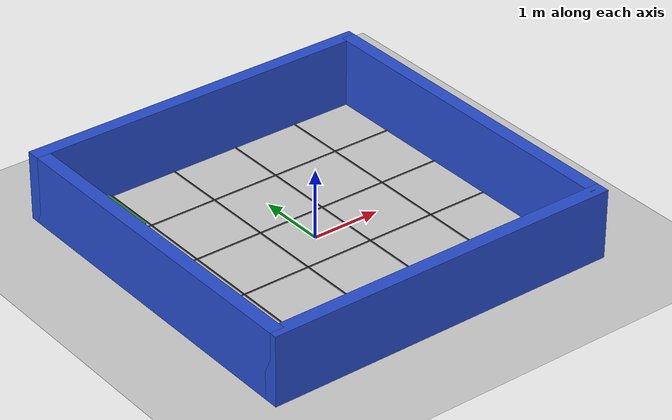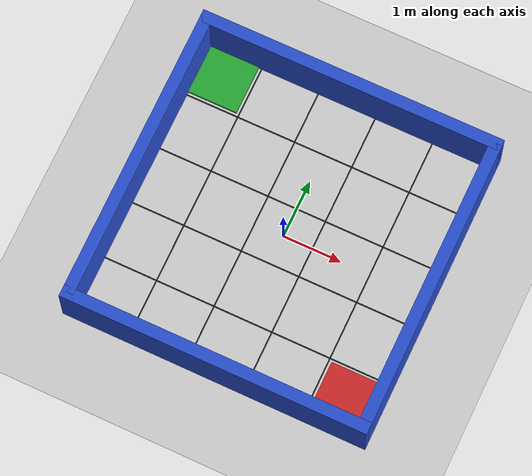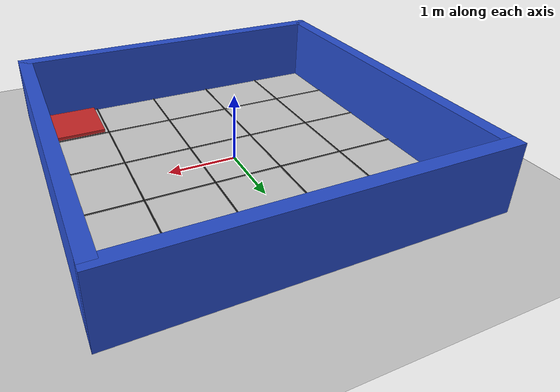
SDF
<?xml version="1.0" ?>
<sdf version="1.6">
  <world name="default">
    <include>
      <uri>model://sun</uri>
    </include>
    <include>
      <uri>model://ground_plane</uri>
    </include>

    <!-- ============ 5x5 Grid Walls ============ -->
    <model name="surrounding_walls">
      <static>true</static>

      <!-- North Wall -->
      <link name="wall_north">
        <pose>0 2.5 0.5 0 0 0</pose>
        <collision name="collision"><geometry><box><size>5.2 0.2 1</size></box></geometry></collision>
        <visual name="visual">
          <geometry><box><size>5.2 0.2 1</size></box></geometry>
          <material><script><uri>file://media/materials/scripts/gazebo.material</uri><name>Gazebo/Blue</name></script></material>
        </visual>
      </link>

      <!-- South Wall -->
      <link name="wall_south">
        <pose>0 -2.5 0.5 0 0 0</pose>
        <collision name="collision"><geometry><box><size>5.2 0.2 1</size></box></geometry></collision>
        <visual name="visual">
          <geometry><box><size>5.2 0.2 1</size></box></geometry>
          <material><script><uri>file://media/materials/scripts/gazebo.material</uri><name>Gazebo/Blue</name></script></material>
        </visual>
      </link>

      <!-- East Wall -->
      <link name="wall_east">
        <pose>2.5 0 0.5 0 0 0</pose>
        <collision name="collision"><geometry><box><size>0.2 5 1</size></box></geometry></collision>
        <visual name="visual">
          <geometry><box><size>0.2 5 1</size></box></geometry>
          <material><script><uri>file://media/materials/scripts/gazebo.material</uri><name>Gazebo/Blue</name></script></material>
        </visual>
      </link>

      <!-- West Wall -->
      <link name="wall_west">
        <pose>-2.5 0 0.5 0 0 0</pose>
        <collision name="collision"><geometry><box><size>0.2 5 1</size></box></geometry></collision>
        <visual name="visual">
          <geometry><box><size>0.2 5 1</size></box></geometry>
          <material><script><uri>file://media/materials/scripts/gazebo.material</uri><name>Gazebo/Blue</name></script></material>
        </visual>
      </link>
    </model>

    <!-- ============ Grid Lines ============ -->
    <model name="ground_grid">
      <static>true</static>
      <!-- Vertical lines X = -1.5 to 1.5 (boundaries) -->
      <link name="gx_n1_5"><pose>-1.5 0 0.01 0 0 0</pose><visual name="v"><geometry><box><size>0.02 5 0.01</size></box></geometry><material><script><uri>file://media/materials/scripts/gazebo.material</uri><name>Gazebo/Black</name></script></material></visual></link>
      <link name="gx_n0_5"><pose>-0.5 0 0.01 0 0 0</pose><visual name="v"><geometry><box><size>0.02 5 0.01</size></box></geometry><material><script><uri>file://media/materials/scripts/gazebo.material</uri><name>Gazebo/Black</name></script></material></visual></link>
      <link name="gx_0_5"><pose>0.5 0 0.01 0 0 0</pose><visual name="v"><geometry><box><size>0.02 5 0.01</size></box></geometry><material><script><uri>file://media/materials/scripts/gazebo.material</uri><name>Gazebo/Black</name></script></material></visual></link>
      <link name="gx_1_5"><pose>1.5 0 0.01 0 0 0</pose><visual name="v"><geometry><box><size>0.02 5 0.01</size></box></geometry><material><script><uri>file://media/materials/scripts/gazebo.material</uri><name>Gazebo/Black</name></script></material></visual></link>

      <!-- Horizontal lines Y = -1.5 to 1.5 -->
      <link name="gy_n1_5"><pose>0 -1.5 0.01 0 0 0</pose><visual name="v"><geometry><box><size>5 0.02 0.01</size></box></geometry><material><script><uri>file://media/materials/scripts/gazebo.material</uri><name>Gazebo/Black</name></script></material></visual></link>
      <link name="gy_n0_5"><pose>0 -0.5 0.01 0 0 0</pose><visual name="v"><geometry><box><size>5 0.02 0.01</size></box></geometry><material><script><uri>file://media/materials/scripts/gazebo.material</uri><name>Gazebo/Black</name></script></material></visual></link>
      <link name="gy_0_5"><pose>0 0.5 0.01 0 0 0</pose><visual name="v"><geometry><box><size>5 0.02 0.01</size></box></geometry><material><script><uri>file://media/materials/scripts/gazebo.material</uri><name>Gazebo/Black</name></script></material></visual></link>
      <link name="gy_1_5"><pose>0 1.5 0.01 0 0 0</pose><visual name="v"><geometry><box><size>5 0.02 0.01</size></box></geometry><material><script><uri>file://media/materials/scripts/gazebo.material</uri><name>Gazebo/Black</name></script></material></visual></link>
    </model>

    <!-- ============ Start (0,0) → Top-Left → Gazebo(-2, 2) ============ -->
    <model name="start_marker">
      <static>true</static>
      <pose>-2 2 0.025 0 0 0</pose>
      <link name="link">
        <visual name="visual">
          <geometry><box><size>0.9 0.9 0.05</size></box></geometry>
          <material><script><uri>file://media/materials/scripts/gazebo.material</uri><name>Gazebo/Green</name></script></material>
        </visual>
      </link>
    </model>

    <!-- ============ Goal (4,4) → Bottom-Right → Gazebo(2, -2) ============ -->
    <model name="goal_marker">
      <static>true</static>
      <pose>2 -2 0.025 0 0 0</pose>
      <link name="link">
        <visual name="visual">
          <geometry><box><size>0.9 0.9 0.05</size></box></geometry>
          <material><script><uri>file://media/materials/scripts/gazebo.material</uri><name>Gazebo/Red</name></script></material>
        </visual>
      </link>
    </model>

  </world>
</sdf>
